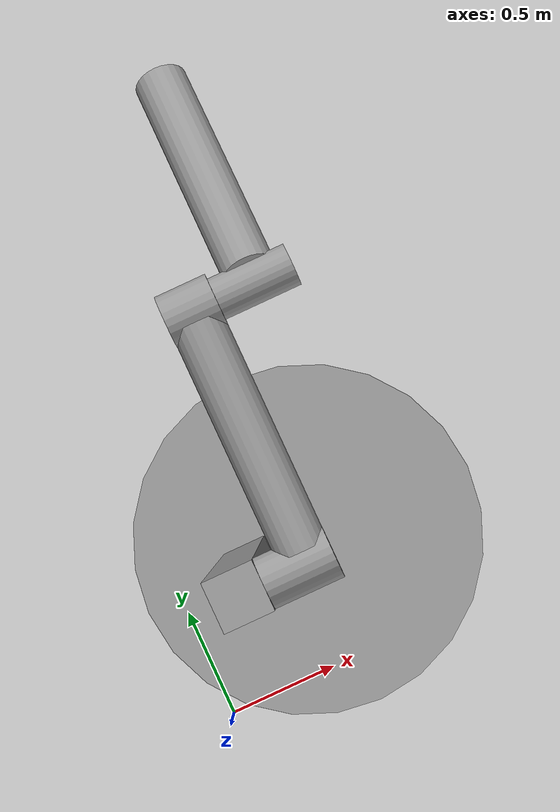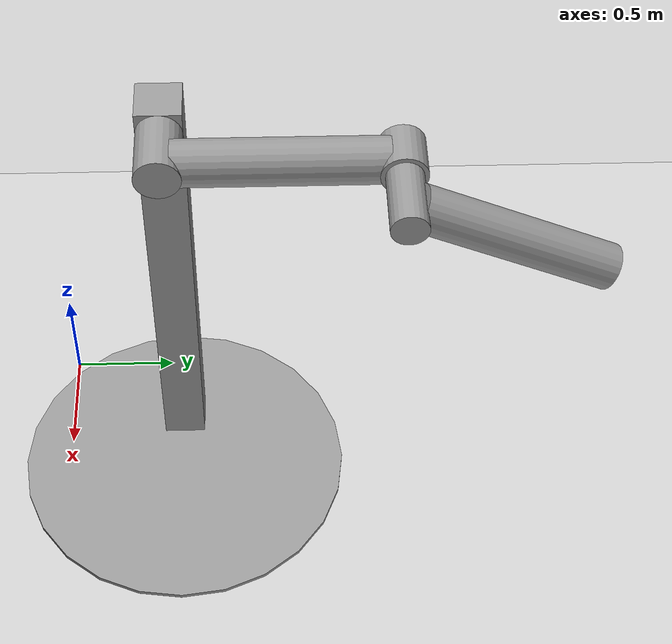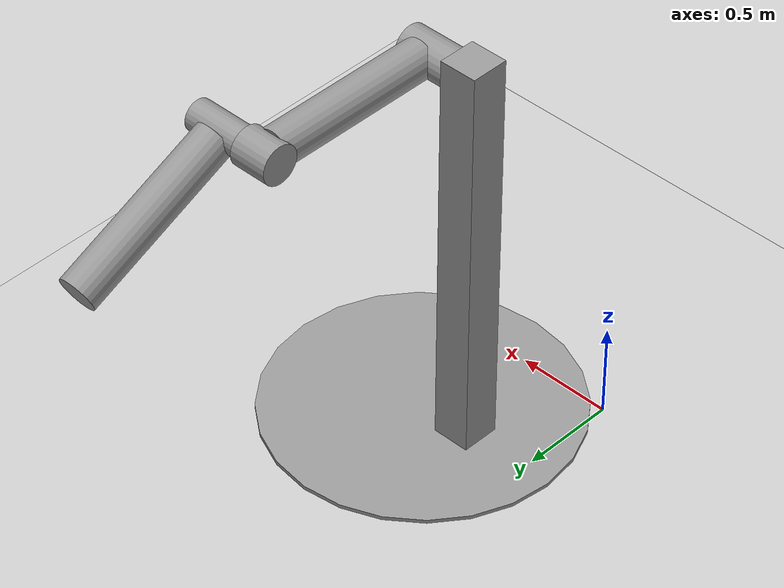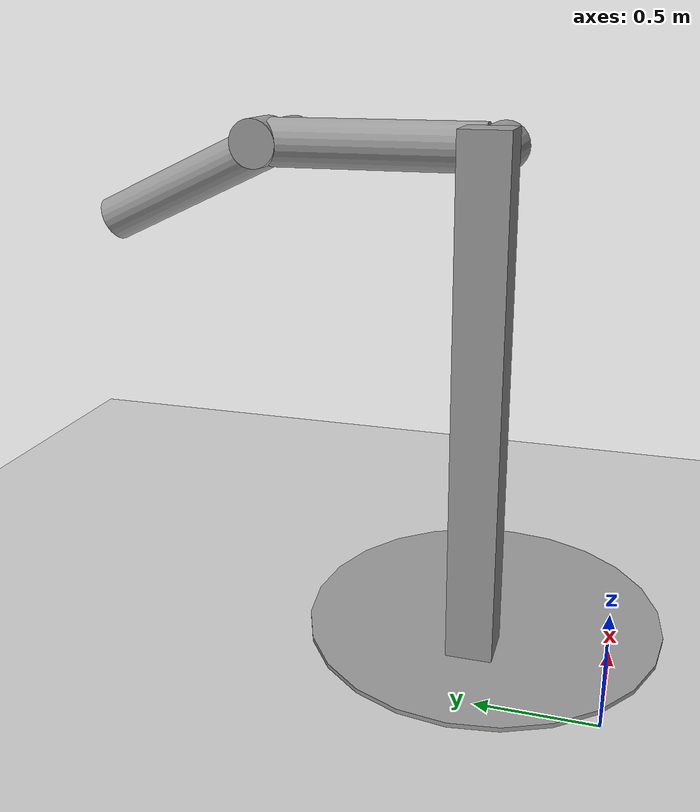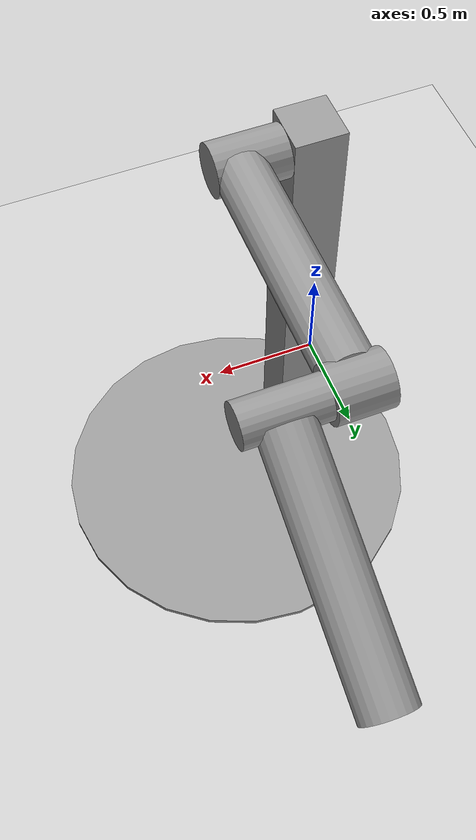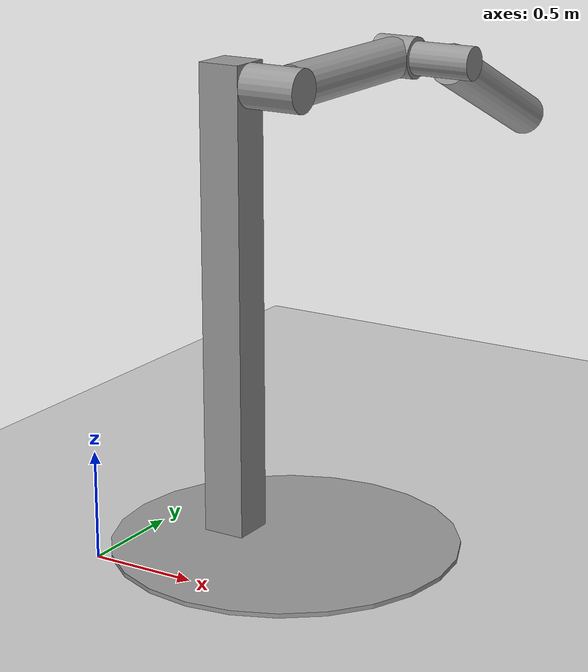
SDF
<sdf version="1.6">
 <world name="default">
  <light name="sun" type="directional">
   <pose>0 0 10 0 -0 0</pose>
   <diffuse>0.8 0.8 0.8 1</diffuse>
   <specular>0.1 0.1 0.1 1</specular>
   <attenuation>
    <range>1000</range>
    <constant>0.9</constant>
    <linear>0.01</linear>
    <quadratic>0.001</quadratic>
   </attenuation>
   <direction>-0.5 0.5 -1</direction>
  </light>
  <model name="ground_plane">
   <static>1</static>
   <link name="link">
    <collision name="collision">
     <geometry><plane><normal>0 0 1</normal><size>100 100</size></plane></geometry>
     <surface><friction><ode><mu>100</mu><mu2>50</mu2></ode></friction></surface>
    </collision>
    <visual name="visual">
     <cast_shadows>0</cast_shadows>
     <geometry><plane><normal>0 0 1</normal><size>100 100</size></plane></geometry>
     <material>
      <script><uri>file://media/materials/scripts/gazebo.material</uri><name>Gazebo/Grey</name></script>
     </material>
    </visual>
   </link>
  </model>
  <gravity>0 0 -9.8</gravity>
  <magnetic_field>6e-06 2.3e-05 -4.2e-05</magnetic_field>
  <atmosphere type="adiabatic"/>
  <physics name="default_physics" default="0" type="ode">
   <max_step_size>0.001</max_step_size>
   <real_time_factor>1</real_time_factor>
   <real_time_update_rate>1000</real_time_update_rate>
  </physics>
  <scene><ambient>0.4 0.4 0.4 1</ambient><background>0.7 0.7 0.7 1</background><shadows>1</shadows></scene>
  <spherical_coordinates>
   <surface_model>EARTH_WGS84</surface_model>
   <latitude_deg>0</latitude_deg>
   <longitude_deg>0</longitude_deg>
   <elevation>0</elevation>
   <heading_deg>0</heading_deg>
  </spherical_coordinates>
  <model name="double_pendulum_with_base">
   <link name="base">
    <inertial>
     <mass>100</mass>
     <inertia><ixx>1</ixx><ixy>0</ixy><ixz>0</ixz><iyy>1</iyy><iyz>0</iyz><izz>1</izz></inertia>
    </inertial>
    <visual name="vis_plate_on_ground">
     <pose>0 0 0.01 0 -0 0</pose>
     <geometry><cylinder><radius>0.8</radius><length>0.02</length></cylinder></geometry>
     <material>
      <script><uri>file://media/materials/scripts/gazebo.material</uri><name>Gazebo/Grey</name></script>
     </material>
    </visual>
    <visual name="vis_pole">
     <pose>-0.275 0 1.1 0 -0 0</pose>
     <geometry><box><size>0.2 0.2 2.2</size></box></geometry>
     <material>
      <script><uri>file://media/materials/scripts/gazebo.material</uri><name>Gazebo/Grey</name></script>
     </material>
    </visual>
    <collision name="col_plate_on_ground">
     <pose>0 0 0.01 0 -0 0</pose>
     <geometry><cylinder><radius>0.8</radius><length>0.02</length></cylinder></geometry>
    </collision>
    <collision name="col_pole">
     <pose>-0.275 0 1.1 0 -0 0</pose>
     <geometry><box><size>0.2 0.2 2.2</size></box></geometry>
    </collision>
   </link>
   <link name="upper_link">
    <pose>0 0 2.1 -1.5708 0 0</pose>
    <inertial>
     <pose>0 0 0.5 0 -0 0</pose>
     <inertia><ixx>1</ixx><ixy>0</ixy><ixz>0</ixz><iyy>1</iyy><iyz>0</iyz><izz>1</izz></inertia>
     <mass>1</mass>
    </inertial>
    <visual name="vis_upper_joint">
     <pose>-0.05 0 0 3.14159 1.57079 3.14159</pose>
     <geometry><cylinder><radius>0.1</radius><length>0.3</length></cylinder></geometry>
     <material>
      <script><uri>file://media/materials/scripts/gazebo.material</uri><name>Gazebo/Grey</name></script>
     </material>
    </visual>
    <visual name="vis_lower_joint">
     <pose>0 0 1 3.14159 1.57079 3.14159</pose>
     <geometry><cylinder><radius>0.1</radius><length>0.2</length></cylinder></geometry>
     <material>
      <script><uri>file://media/materials/scripts/gazebo.material</uri><name>Gazebo/Grey</name></script>
     </material>
    </visual>
    <visual name="vis_cylinder">
     <pose>0 0 0.5 0 -0 0</pose>
     <geometry><cylinder><radius>0.1</radius><length>0.9</length></cylinder></geometry>
     <material>
      <script><uri>file://media/materials/scripts/gazebo.material</uri><name>Gazebo/Grey</name></script>
     </material>
    </visual>
    <collision name="col_upper_joint">
     <pose>-0.05 0 0 3.14159 1.57079 3.14159</pose>
     <geometry><cylinder><radius>0.1</radius><length>0.3</length></cylinder></geometry>
    </collision>
    <collision name="col_lower_joint">
     <pose>0 0 1 3.14159 1.57079 3.14159</pose>
     <geometry><cylinder><radius>0.1</radius><length>0.2</length></cylinder></geometry>
    </collision>
    <collision name="col_cylinder">
     <pose>0 0 0.5 0 -0 0</pose>
     <geometry><cylinder><radius>0.1</radius><length>0.9</length></cylinder></geometry>
    </collision>
    <sensor name="imu_sensor" type="imu">
     <always_on>true</always_on>
     <update_rate>100</update_rate>
     <visualize>true</visualize>
     <topic>__default_topic__</topic>
     <plugin filename="libgazebo_ros_imu_sensor.so" name="imu_plugin">
      <topicName>imu</topicName>
      <bodyName>imu_link</bodyName>
      <updateRateHZ>50.0</updateRateHZ>
      <gaussianNoise>0.0</gaussianNoise>
      <xyzOffset>0 0 0</xyzOffset>
      <rpyOffset>0 0 0</rpyOffset>
      <frameName>imu_link</frameName>
     </plugin>
    </sensor>
   </link>
   <link name="lower_link">
    <pose>0.25 1 2.1 -2 0 0</pose>
    <inertial>
     <pose>0 0 0.5 0 -0 0</pose>
     <inertia><ixx>1</ixx><ixy>0</ixy><ixz>0</ixz><iyy>1</iyy><iyz>0</iyz><izz>1</izz></inertia>
     <mass>1</mass>
    </inertial>
    <visual name="vis_lower_joint">
     <pose>0 0 0 3.14159 1.57079 3.14159</pose>
     <geometry><cylinder><radius>0.08</radius><length>0.3</length></cylinder></geometry>
     <material>
      <script><uri>file://media/materials/scripts/gazebo.material</uri><name>Gazebo/Grey</name></script>
     </material>
    </visual>
    <visual name="vis_cylinder">
     <pose>0 0 0.5 0 -0 0</pose>
     <geometry><cylinder><radius>0.1</radius><length>0.9</length></cylinder></geometry>
     <material>
      <script><uri>file://media/materials/scripts/gazebo.material</uri><name>Gazebo/Grey</name></script>
     </material>
    </visual>
    <collision name="col_lower_joint">
     <pose>0 0 0 3.14159 1.57079 3.14159</pose>
     <geometry><cylinder><radius>0.08</radius><length>0.3</length></cylinder></geometry>
    </collision>
    <collision name="col_cylinder">
     <pose>0 0 0.5 0 -0 0</pose>
     <geometry><cylinder><radius>0.1</radius><length>0.9</length></cylinder></geometry>
    </collision>
   </link>
   <joint name="upper_joint" type="revolute">
    <parent>base</parent>
    <child>upper_link</child>
    <axis>
     <xyz>1 0 0</xyz>
     <use_parent_model_frame>1</use_parent_model_frame>
     <limit><lower>-1e+16</lower><upper>1e+16</upper></limit>
     <dynamics><spring_reference>0</spring_reference><spring_stiffness>0</spring_stiffness></dynamics>
    </axis>
   </joint>
   <joint name="lower_joint" type="revolute">
    <parent>upper_link</parent>
    <child>lower_link</child>
    <axis>
     <xyz>1 0 0</xyz>
     <use_parent_model_frame>1</use_parent_model_frame>
     <limit><lower>-1e+16</lower><upper>1e+16</upper></limit>
     <dynamics><spring_reference>0</spring_reference><spring_stiffness>0</spring_stiffness></dynamics>
    </axis>
   </joint>
   <pose>0.636091 0.574853 0 0 0 -0.000128</pose>
  </model>
 </world>
</sdf>
